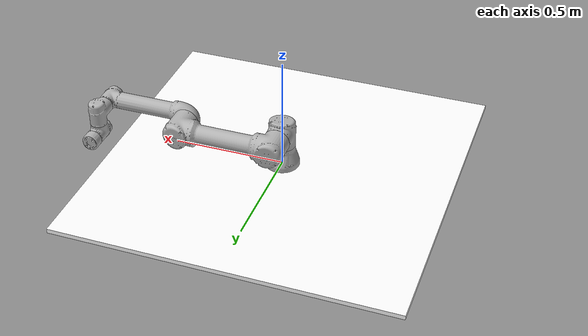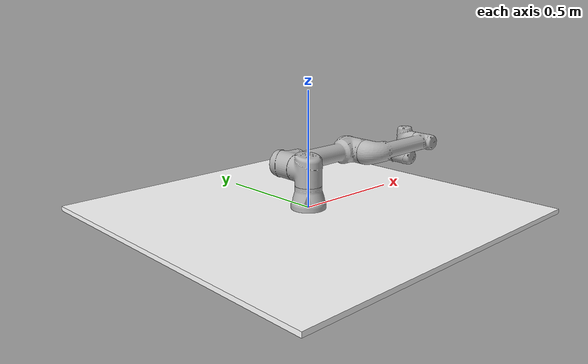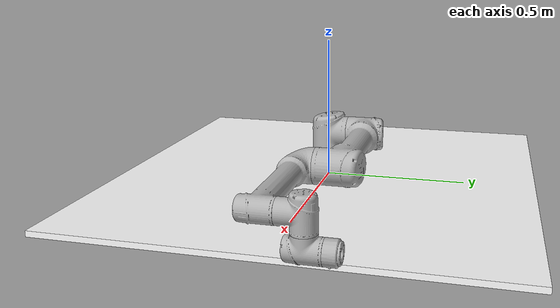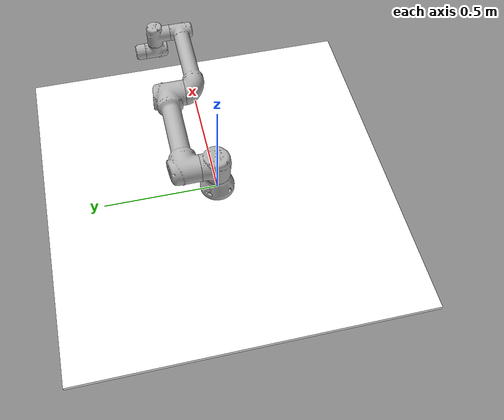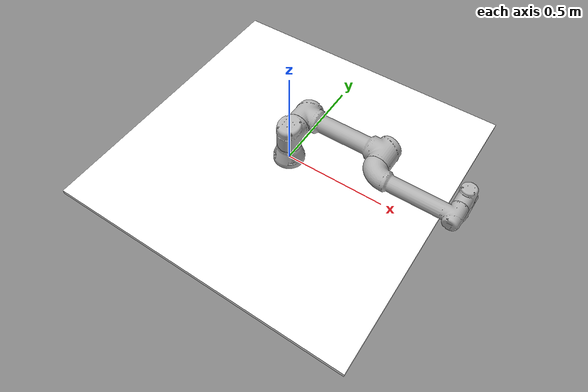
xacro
<?xml version="1.0"?>
<robot xmlns:xacro="http://wiki.ros.org/xacro"
       name="ur5e" >

  <xacro:arg name="transmission_hw_interface" default="hardware_interface/PositionJointInterface"/>
  <!-- common stuff -->
  <xacro:include filename="$(find ur_e_description)/urdf/common.gazebo.xacro" />
  <!-- ur5e -->
  <xacro:include filename="$(find ur_e_description)/urdf/ur5e.urdf.xacro" />

  <!-- arm -->
  <xacro:ur5e_robot prefix="" joint_limited="true"
    shoulder_pan_lower_limit="${-pi}" shoulder_pan_upper_limit="${pi}"
    shoulder_lift_lower_limit="${-pi}" shoulder_lift_upper_limit="${pi}"
    elbow_joint_lower_limit="${-pi}" elbow_joint_upper_limit="${pi}"
    wrist_1_lower_limit="${-pi}" wrist_1_upper_limit="${pi}"
    wrist_2_lower_limit="${-pi}" wrist_2_upper_limit="${pi}"
    wrist_3_lower_limit="${-pi}" wrist_3_upper_limit="${pi}"
    transmission_hw_interface="$(arg transmission_hw_interface)"
  />

  <material name="white">
    <color rgba="1 1 1 1"/>
  </material>

  <link name="table">
    <visual>
      <geometry>
        <box size="1.5 1.5 0.02"/>
      </geometry>
      <material name="white"/>
    </visual>
    <collision>
      <geometry>
        <box size="1.5 1.5 0.02"/>
      </geometry>
    </collision>
  </link>

  <joint name="table_joint" type="fixed">
    <parent link="base_link"/>
    <child link="table"/>
    <origin xyz="0.0 0.0 -0.01" rpy="0 0 0"/>
  </joint>

  <link name="world" />

  <joint name="world_joint" type="fixed">
    <parent link="world" />
    <child link = "base_link" />
    <origin xyz="0.0 0.0 0.0" rpy="0.0 0.0 0.0" />
  </joint>

    <!-- Spawn user camera -->
    <link name="camera_link"/>
    <!-- Attach camera to tool0 -->
    <joint name="camera" type="fixed">
      <origin xyz="0 -0.000447 0.08739618542" rpy="0 ${-pi/2} ${pi/2}" />
      <parent link="tool0" />
      <child link="camera_link" />
    </joint>
    <link name="cameradepth_link"/>
    <!-- Attach camera to tool0 -->
    <joint name="camera_depth" type="fixed">
      <origin xyz="0 0 0" rpy="${pi/2} ${0} ${pi/2}" />
      <parent link="camera_link" />
      <child link="cameradepth_link" />
    </joint>

<gazebo reference="camera_link">
  <sensor name="rgbd" type="depth">
    <update_rate>100</update_rate>
    <camera>
      <horizontal_fov>1.047198</horizontal_fov>
      <image>
        <width>1080</width>
        <height>680</height>
        <format>R8G8B8</format>
      </image>
      <clip>
        <near>0.005</near>
        <far>10</far>
      </clip>
    </camera>
    <plugin name="camera_controller" filename="libgazebo_ros_openni_kinect.so">
      <baseline>0.2</baseline>
      <alwaysOn>true</alwaysOn>
      <updateRate>1.0</updateRate>
      <cameraName>camera_ir</cameraName>
      <imageTopicName>/camera/color/image_raw</imageTopicName>
      <cameraInfoTopicName>/camera/color/camera_info</cameraInfoTopicName>
      <depthImageTopicName>/camera/depth/image_raw</depthImageTopicName>
      <depthImageInfoTopicName>/camera/depth/camera_info</depthImageInfoTopicName>
      <pointCloudTopicName>/camera/depth/points</pointCloudTopicName>
      <frameName>cameradepth_link</frameName>
      <pointCloudCutoff>0.5</pointCloudCutoff>
      <pointCloudCutoffMax>3.0</pointCloudCutoffMax>
      <distortionK1>0.00000001</distortionK1>
      <distortionK2>0.00000001</distortionK2>
      <distortionK3>0.00000001</distortionK3>
      <distortionT1>0.00000001</distortionT1>
      <distortionT2>0.00000001</distortionT2>
      <CxPrime>0</CxPrime>
      <Cx>0</Cx>
      <Cy>0</Cy>
      <focalLength>0</focalLength>
      <hackBaseline>0</hackBaseline>
    </plugin>
  </sensor>
</gazebo>

</robot>

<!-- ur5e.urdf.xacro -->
<robot xmlns:xacro="http://ros.org/wiki/xacro">

  <xacro:include filename="$(find ur_e_description)/urdf/ur.transmission.xacro" />
  <xacro:include filename="$(find ur_e_description)/urdf/ur.gazebo.xacro" />

  <xacro:macro name="cylinder_inertial" params="radius length mass *origin">
    <inertial>
      <mass value="${mass}" />
      <xacro:insert_block name="origin" />
      <inertia ixx="${0.0833333 * mass * (3 * radius * radius + length * length)}" ixy="0.0" ixz="0.0"
        iyy="${0.0833333 * mass * (3 * radius * radius + length * length)}" iyz="0.0"
        izz="${0.5 * mass * radius * radius}" />
    </inertial>
  </xacro:macro>

  <xacro:macro name="ur5e_robot" params="prefix joint_limited
    shoulder_pan_lower_limit:=${-pi}    shoulder_pan_upper_limit:=${pi}
    shoulder_lift_lower_limit:=${-pi}    shoulder_lift_upper_limit:=${pi}
    elbow_joint_lower_limit:=${-pi}    elbow_joint_upper_limit:=${pi}
    wrist_1_lower_limit:=${-pi}    wrist_1_upper_limit:=${pi}
    wrist_2_lower_limit:=${-pi}    wrist_2_upper_limit:=${pi}
    wrist_3_lower_limit:=${-pi}    wrist_3_upper_limit:=${pi}
    transmission_hw_interface:=hardware_interface/PositionJointInterface
    safety_limits:=false safety_pos_margin:=0.15
    safety_k_position:=20">

    <!-- Inertia parameters -->
    <xacro:property name="base_mass" value="4.0" />  <!-- This mass might be incorrect -->
    <xacro:property name="shoulder_mass" value="3.7000" />
    <xacro:property name="upper_arm_mass" value="8.3930" />
    <xacro:property name="forearm_mass" value="2.2750" />
    <xacro:property name="wrist_1_mass" value="1.2190" />
    <xacro:property name="wrist_2_mass" value="1.2190" />
    <xacro:property name="wrist_3_mass" value="0.1879" />

    <xacro:property name="shoulder_cog" value="0.0 0.00193 -0.02561" />
    <xacro:property name="upper_arm_cog" value="0.0 -0.024201 0.2125" />
    <xacro:property name="forearm_cog" value="0.0 0.0265 0.11993" />
    <xacro:property name="wrist_1_cog" value="0.0 0.110949 0.01634" />
    <xacro:property name="wrist_2_cog" value="0.0 0.0018 0.11099" />
    <xacro:property name="wrist_3_cog" value="0.0 0.001159 0.0" />

    <!-- Kinematic model -->
    <!-- Properties from urcontrol.conf -->
    <xacro:property name="d1" value="0.163" />
    <xacro:property name="a2" value="-0.425" />
    <xacro:property name="a3" value="-0.392" />
    <xacro:property name="d4" value="0.127" />
    <xacro:property name="d5" value="0.100" />
    <xacro:property name="d6" value="0.100" />

    <!-- Arbitrary offsets for shoulder/elbow joints -->
    <xacro:property name="shoulder_offset" value="0.138" />
    <xacro:property name="elbow_offset" value="-0.131" />

    <!-- link lengths used in model -->
    <xacro:property name="shoulder_height" value="${d1}" />
    <xacro:property name="upper_arm_length" value="${-a2}" />
    <xacro:property name="forearm_length" value="${-a3}" />
    <xacro:property name="wrist_1_length" value="${d4}" />
    <xacro:property name="wrist_2_length" value="${d5}" />
    <xacro:property name="wrist_3_length" value="${d6}" />
    <!--property name="shoulder_height" value="0.089159" /-->
    <!--property name="shoulder_offset" value="0.13585" /-->  <!-- shoulder_offset - elbow_offset + wrist_1_length = 0.10915 -->
    <!--property name="upper_arm_length" value="0.42500" /-->
    <!--property name="elbow_offset" value="0.1197" /-->       <!-- CAD measured -->
    <!--property name="forearm_length" value="0.39225" /-->
    <!--property name="wrist_1_length" value="0.093" /-->     <!-- CAD measured -->
    <!--property name="wrist_2_length" value="0.09465" /-->   <!-- In CAD this distance is 0.930, but in the spec it is 0.09465 -->
    <!--property name="wrist_3_length" value="0.0823" /-->

    <xacro:property name="shoulder_radius" value="0.060" />   <!-- manually measured -->
    <xacro:property name="upper_arm_radius" value="0.054" />  <!-- manually measured -->
    <xacro:property name="elbow_radius" value="0.060" />      <!-- manually measured -->
    <xacro:property name="forearm_radius" value="0.040" />    <!-- manually measured -->
    <xacro:property name="wrist_radius" value="0.045" />      <!-- manually measured -->

    <link name="${prefix}base_link" >
      <visual>
        <geometry>
          <mesh filename="package://ur_e_description/meshes/ur5e/visual/base.dae" />
        </geometry>
        <material name="LightGrey">
          <color rgba="0.7 0.7 0.7 1.0"/>
        </material>
      </visual>
      <collision>
        <geometry>
          <mesh filename="package://ur_e_description/meshes/ur5e/collision/base.stl" />
        </geometry>
      </collision>
      <xacro:cylinder_inertial radius="0.06" length="0.05" mass="${base_mass}">
        <origin xyz="0.0 0.0 0.0" rpy="0 0 0" />
      </xacro:cylinder_inertial>
    </link>

    <joint name="${prefix}shoulder_pan_joint" type="revolute">
      <parent link="${prefix}base_link" />
      <child link = "${prefix}shoulder_link" />
      <origin xyz="0.0 0.0 ${shoulder_height}" rpy="0.0 0.0 0.0" />
      <axis xyz="0 0 1" />
      <xacro:unless value="${joint_limited}">
        <limit lower="${-2.0 * pi}" upper="${2.0 * pi}" effort="150.0" velocity="3.14"/>
        <xacro:if value="${safety_limits}">
          <safety_controller soft_lower_limit="${-2.0 * pi + safety_pos_margin}" soft_upper_limit="${2.0 * pi - safety_pos_margin}" k_position="${safety_k_position}" k_velocity="0.0"/>
        </xacro:if>
      </xacro:unless>
      <xacro:if value="${joint_limited}">
        <limit lower="${shoulder_pan_lower_limit}" upper="${shoulder_pan_upper_limit}" effort="150.0" velocity="3.14"/>
        <xacro:if value="${safety_limits}">
          <safety_controller soft_lower_limit="${shoulder_pan_lower_limit + safety_pos_margin}" soft_upper_limit="${shoulder_pan_upper_limit - safety_pos_margin}" k_position="${safety_k_position}" k_velocity="0.0"/>
        </xacro:if>
      </xacro:if>
      <dynamics damping="0.0" friction="0.0"/>
    </joint>

    <link name="${prefix}shoulder_link">
      <visual>
        <geometry>
          <mesh filename="package://ur_e_description/meshes/ur5e/visual/shoulder.dae" />
        </geometry>
        <material name="LightGrey">
          <color rgba="0.7 0.7 0.7 1.0"/>
        </material>
      </visual>
      <collision>
        <geometry>
          <mesh filename="package://ur_e_description/meshes/ur5e/collision/shoulder.stl" />
        </geometry>
      </collision>
      <xacro:cylinder_inertial radius="0.06" length="0.15" mass="${shoulder_mass}">
        <origin xyz="0.0 0.0 0.0" rpy="0 0 0" />
      </xacro:cylinder_inertial>
    </link>

    <joint name="${prefix}shoulder_lift_joint" type="revolute">
      <parent link="${prefix}shoulder_link" />
      <child link = "${prefix}upper_arm_link" />
      <origin xyz="0.0 ${shoulder_offset} 0.0" rpy="0.0 ${pi / 2.0} 0.0" />
      <axis xyz="0 1 0" />
      <xacro:unless value="${joint_limited}">
        <limit lower="${-2.0 * pi}" upper="${2.0 * pi}" effort="150.0" velocity="3.14"/>
        <xacro:if value="${safety_limits}">
          <safety_controller soft_lower_limit="${-2.0 * pi + safety_pos_margin}" soft_upper_limit="${2.0 * pi - safety_pos_margin}" k_position="${safety_k_position}" k_velocity="0.0"/>
        </xacro:if>
      </xacro:unless>
      <xacro:if value="${joint_limited}">
        <limit lower="${shoulder_lift_lower_limit}" upper="${shoulder_lift_upper_limit}" effort="150.0" velocity="3.14"/>
        <xacro:if value="${safety_limits}">
          <safety_controller soft_lower_limit="${shoulder_lift_lower_limit + safety_pos_margin}" soft_upper_limit="${shoulder_lift_upper_limit - safety_pos_margin}" k_position="${safety_k_position}" k_velocity="0.0"/>
        </xacro:if>
      </xacro:if>
      <dynamics damping="0.0" friction="0.0"/>
    </joint>

    <link name="${prefix}upper_arm_link">
      <visual>
        <geometry>
          <mesh filename="package://ur_e_description/meshes/ur5e/visual/upperarm.dae" />
        </geometry>
        <material name="LightGrey">
          <color rgba="0.7 0.7 0.7 1.0"/>
        </material>
      </visual>
      <collision>
        <geometry>
          <mesh filename="package://ur_e_description/meshes/ur5e/collision/upperarm.stl" />
        </geometry>
      </collision>
      <xacro:cylinder_inertial radius="0.06" length="${upper_arm_length}" mass="${upper_arm_mass}">
        <origin xyz="0.0 0.0 ${upper_arm_length/2}" rpy="0 0 0" />
      </xacro:cylinder_inertial>
    </link>

    <joint name="${prefix}elbow_joint" type="revolute">
      <parent link="${prefix}upper_arm_link" />
      <child link = "${prefix}forearm_link" />
      <origin xyz="0.0 ${elbow_offset} ${upper_arm_length}" rpy="0.0 0.0 0.0" />
      <axis xyz="0 1 0" />
      <xacro:unless value="${joint_limited}">
        <limit lower="${-pi}" upper="${pi}" effort="150.0" velocity="3.14"/>
        <xacro:if value="${safety_limits}">
          <safety_controller soft_lower_limit="${-2.0 * pi + safety_pos_margin}" soft_upper_limit="${2.0 * pi - safety_pos_margin}" k_position="${safety_k_position}" k_velocity="0.0"/>
        </xacro:if>
      </xacro:unless>
      <xacro:if value="${joint_limited}">
        <limit lower="${elbow_joint_lower_limit}" upper="${elbow_joint_upper_limit}" effort="150.0" velocity="3.14"/>
        <xacro:if value="${safety_limits}">
          <safety_controller soft_lower_limit="${elbow_joint_lower_limit + safety_pos_margin}" soft_upper_limit="${elbow_joint_upper_limit - safety_pos_margin}" k_position="${safety_k_position}" k_velocity="0.0"/>
        </xacro:if>
      </xacro:if>
      <dynamics damping="0.0" friction="0.0"/>
    </joint>

    <link name="${prefix}forearm_link">
      <visual>
        <geometry>
          <mesh filename="package://ur_e_description/meshes/ur5e/visual/forearm.dae" />
        </geometry>
        <material name="LightGrey">
          <color rgba="0.7 0.7 0.7 1.0"/>
        </material>
      </visual>
      <collision>
        <geometry>
          <mesh filename="package://ur_e_description/meshes/ur5e/collision/forearm.stl" />
        </geometry>
      </collision>
      <xacro:cylinder_inertial radius="0.06" length="${forearm_length}" mass="${forearm_mass}">
        <origin xyz="0.0 0.0 ${forearm_length/2}" rpy="0 0 0" />
      </xacro:cylinder_inertial>
    </link>

    <joint name="${prefix}wrist_1_joint" type="revolute">
      <parent link="${prefix}forearm_link" />
      <child link = "${prefix}wrist_1_link" />
      <origin xyz="0.0 0.0 ${forearm_length}" rpy="0.0 ${pi / 2.0} 0.0" />
      <axis xyz="0 1 0" />
      <xacro:unless value="${joint_limited}">
        <limit lower="${-2.0 * pi}" upper="${2.0 * pi}" effort="28.0" velocity="6.28"/>
        <xacro:if value="${safety_limits}">
          <safety_controller soft_lower_limit="${-2.0 * pi + safety_pos_margin}" soft_upper_limit="${2.0 * pi - safety_pos_margin}" k_position="${safety_k_position}" k_velocity="0.0"/>
        </xacro:if>
      </xacro:unless>
      <xacro:if value="${joint_limited}">
        <limit lower="${wrist_1_lower_limit}" upper="${wrist_1_upper_limit}" effort="28.0" velocity="6.28"/>
        <xacro:if value="${safety_limits}">
          <safety_controller soft_lower_limit="${wrist_1_lower_limit + safety_pos_margin}" soft_upper_limit="${wrist_1_upper_limit - safety_pos_margin}" k_position="${safety_k_position}" k_velocity="0.0"/>
        </xacro:if>
      </xacro:if>
      <dynamics damping="0.0" friction="0.0"/>
    </joint>

    <link name="${prefix}wrist_1_link">
      <visual>
        <geometry>
          <mesh filename="package://ur_e_description/meshes/ur5e/visual/wrist1.dae" />
        </geometry>
        <material name="LightGrey">
          <color rgba="0.7 0.7 0.7 1.0"/>
        </material>
      </visual>
      <collision>
        <geometry>
          <mesh filename="package://ur_e_description/meshes/ur5e/collision/wrist1.stl" />
        </geometry>
      </collision>
      <xacro:cylinder_inertial radius="0.06" length="0.12" mass="${wrist_1_mass}">
        <origin xyz="0.0 ${wrist_1_length} 0.0" rpy="0 0 0" />
      </xacro:cylinder_inertial>
    </link>

    <joint name="${prefix}wrist_2_joint" type="revolute">
      <parent link="${prefix}wrist_1_link" />
      <child link = "${prefix}wrist_2_link" />
      <origin xyz="0.0 ${wrist_1_length} 0.0" rpy="0.0 0.0 0.0" />
      <axis xyz="0 0 1" />
      <xacro:unless value="${joint_limited}">
        <limit lower="${-2.0 * pi}" upper="${2.0 * pi}" effort="28.0" velocity="6.28"/>
        <xacro:if value="${safety_limits}">
          <safety_controller soft_lower_limit="${-2.0 * pi + safety_pos_margin}" soft_upper_limit="${2.0 * pi - safety_pos_margin}" k_position="${safety_k_position}" k_velocity="0.0"/>
        </xacro:if>
      </xacro:unless>
      <xacro:if value="${joint_limited}">
        <limit lower="${wrist_2_lower_limit}" upper="${wrist_2_upper_limit}" effort="28.0" velocity="6.28"/>
        <xacro:if value="${safety_limits}">
          <safety_controller soft_lower_limit="${wrist_2_lower_limit + safety_pos_margin}" soft_upper_limit="${wrist_2_upper_limit - safety_pos_margin}" k_position="${safety_k_position}" k_velocity="0.0"/>
        </xacro:if>
      </xacro:if>
      <dynamics damping="0.0" friction="0.0"/>
    </joint>

    <link name="${prefix}wrist_2_link">
      <visual>
        <geometry>
          <mesh filename="package://ur_e_description/meshes/ur5e/visual/wrist2.dae" />
        </geometry>
        <material name="LightGrey">
          <color rgba="0.7 0.7 0.7 1.0"/>
        </material>
      </visual>
      <collision>
        <geometry>
          <mesh filename="package://ur_e_description/meshes/ur5e/collision/wrist2.stl" />
        </geometry>
      </collision>
      <xacro:cylinder_inertial radius="0.06" length="0.12" mass="${wrist_2_mass}">
        <origin xyz="0.0 0.0 ${wrist_2_length}" rpy="0 0 0" />
      </xacro:cylinder_inertial>
    </link>

    <joint name="${prefix}wrist_3_joint" type="revolute">
      <parent link="${prefix}wrist_2_link" />
      <child link = "${prefix}wrist_3_link" />
      <origin xyz="0.0 0.0 ${wrist_2_length}" rpy="0.0 0.0 0.0" />
      <axis xyz="0 1 0" />
      <xacro:unless value="${joint_limited}">
        <limit lower="${-2.0 * pi}" upper="${2.0 * pi}" effort="28.0" velocity="6.28"/>
        <xacro:if value="${safety_limits}">
          <safety_controller soft_lower_limit="${-2.0 * pi + safety_pos_margin}" soft_upper_limit="${2.0 * pi - safety_pos_margin}" k_position="${safety_k_position}" k_velocity="0.0"/>
        </xacro:if>
      </xacro:unless>
      <xacro:if value="${joint_limited}">
        <limit lower="${wrist_3_lower_limit}" upper="${wrist_3_upper_limit}" effort="28.0" velocity="6.28"/>
        <xacro:if value="${safety_limits}">
          <safety_controller soft_lower_limit="${wrist_3_lower_limit + safety_pos_margin}" soft_upper_limit="${wrist_3_upper_limit - safety_pos_margin}" k_position="${safety_k_position}" k_velocity="0.0"/>
        </xacro:if>
      </xacro:if>
      <dynamics damping="0.0" friction="0.0"/>
    </joint>

    <link name="${prefix}wrist_3_link">
      <visual>
        <geometry>
          <mesh filename="package://ur_e_description/meshes/ur5e/visual/wrist3.dae" />
        </geometry>
        <material name="LightGrey">
          <color rgba="0.7 0.7 0.7 1.0"/>
        </material>
      </visual>
      <collision>
        <geometry>
          <mesh filename="package://ur_e_description/meshes/ur5e/collision/wrist3.stl" />
        </geometry>
      </collision>
      <xacro:cylinder_inertial radius="0.0375" length="0.0458" mass="${wrist_3_mass}">
        <origin xyz="0.0 ${wrist_3_length - 0.0458/2} 0.0" rpy="${pi/2} 0 0" />
      </xacro:cylinder_inertial>
    </link>

    <joint name="${prefix}ee_fixed_joint" type="fixed">
      <parent link="${prefix}wrist_3_link" />
      <child link = "${prefix}ee_link" />
      <origin xyz="0.0 ${wrist_3_length} 0.0" rpy="0.0 0.0 ${pi/2.0}" />
    </joint>

    <link name="${prefix}ee_link">
      <collision>
        <geometry>
          <box size="0.01 0.01 0.01"/>
        </geometry>
        <origin rpy="0 0 0" xyz="-0.01 0 0"/>
      </collision>
    </link>

    <xacro:ur_arm_transmission prefix="${prefix}" />
    <xacro:ur_arm_gazebo prefix="${prefix}" />

    <!-- ROS base_link to UR 'Base' Coordinates transform -->
    <link name="${prefix}base"/>
    <joint name="${prefix}base_link-base_fixed_joint" type="fixed">
      <!-- NOTE: this rotation is only needed as long as base_link itself is
                 not corrected wrt the real robot (ie: rotated over 180
                 degrees)
      -->
      <origin xyz="0 0 0" rpy="0 0 ${-pi}"/>
      <parent link="${prefix}base_link"/>
      <child link="${prefix}base"/>
    </joint>

    <!-- Frame coincident with all-zeros TCP on UR controller -->
    <link name="${prefix}tool0"/>
    <joint name="${prefix}wrist_3_link-tool0_fixed_joint" type="fixed">
      <origin xyz="0 ${wrist_3_length} 0" rpy="${pi/-2.0} 0 0"/>
      <parent link="${prefix}wrist_3_link"/>
      <child link="${prefix}tool0"/>
    </joint>

  </xacro:macro>
</robot>
